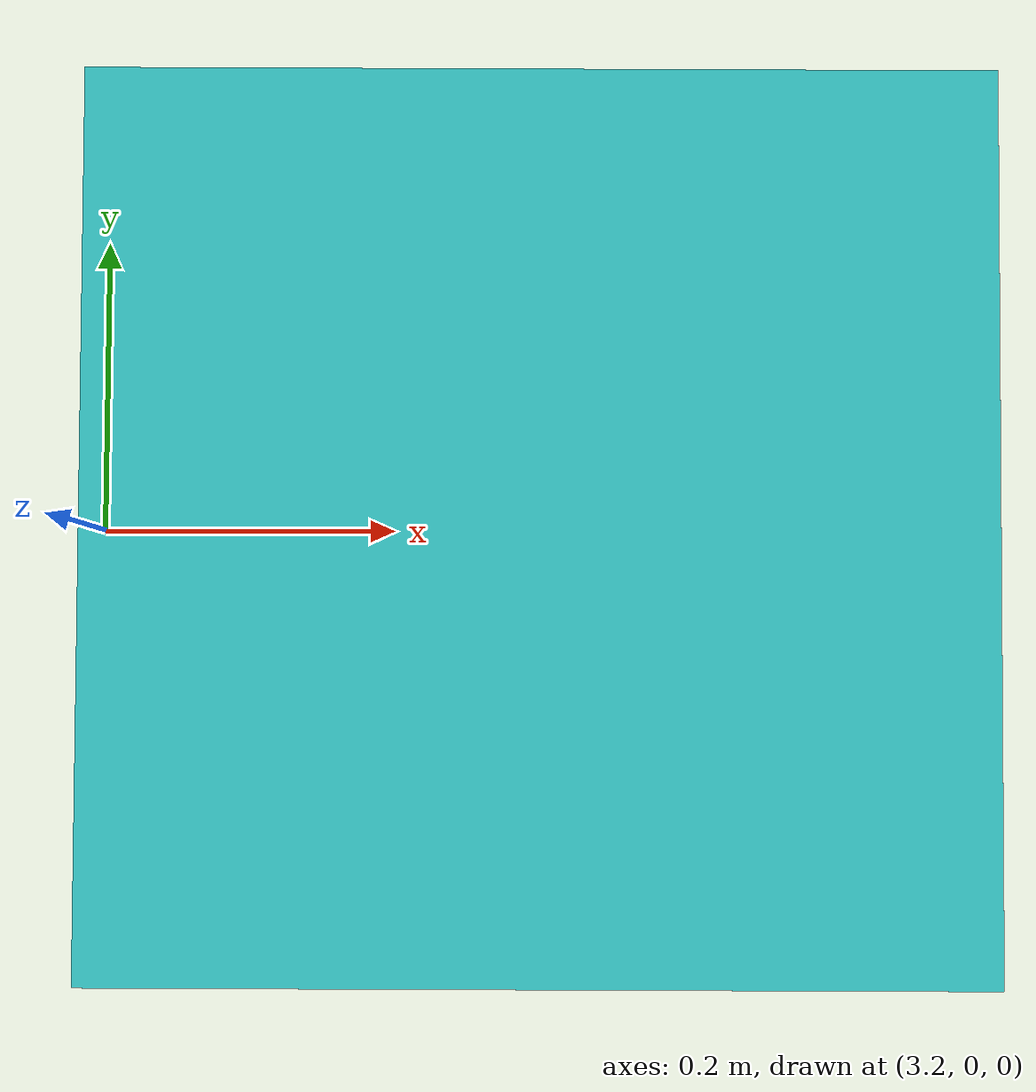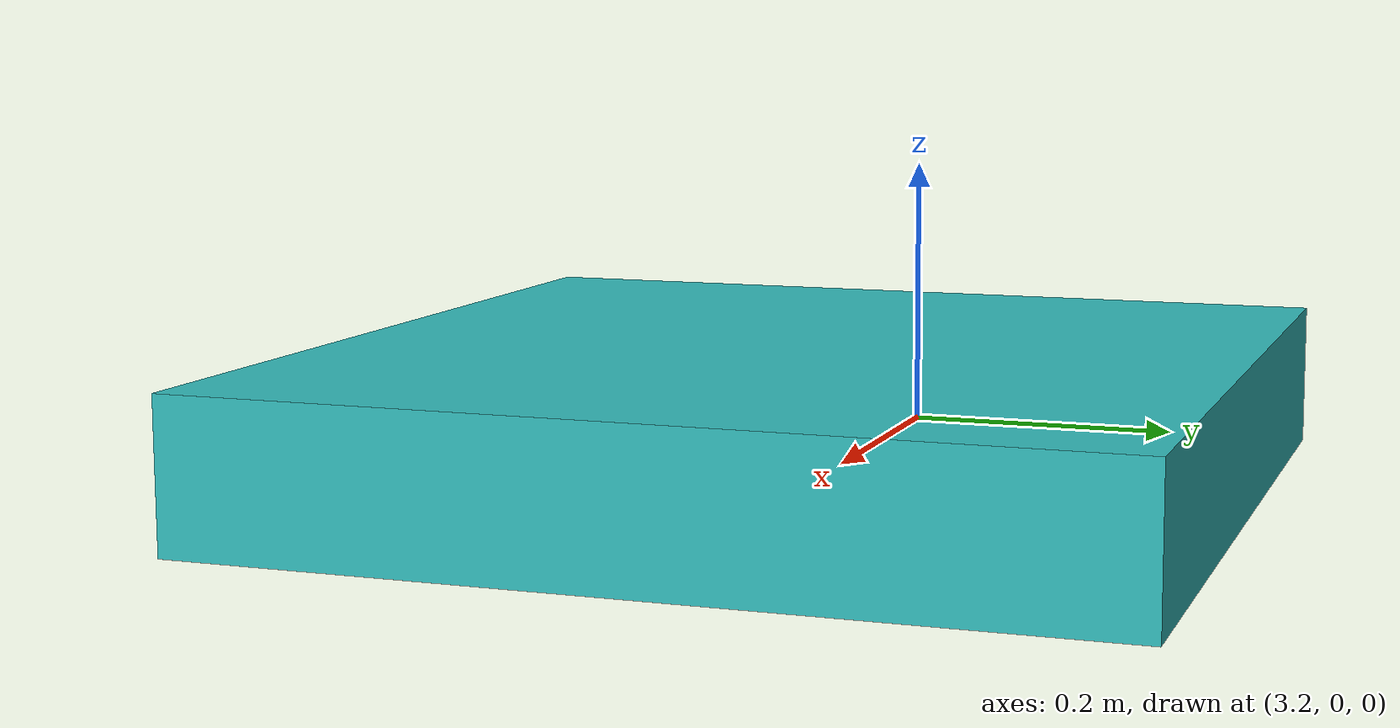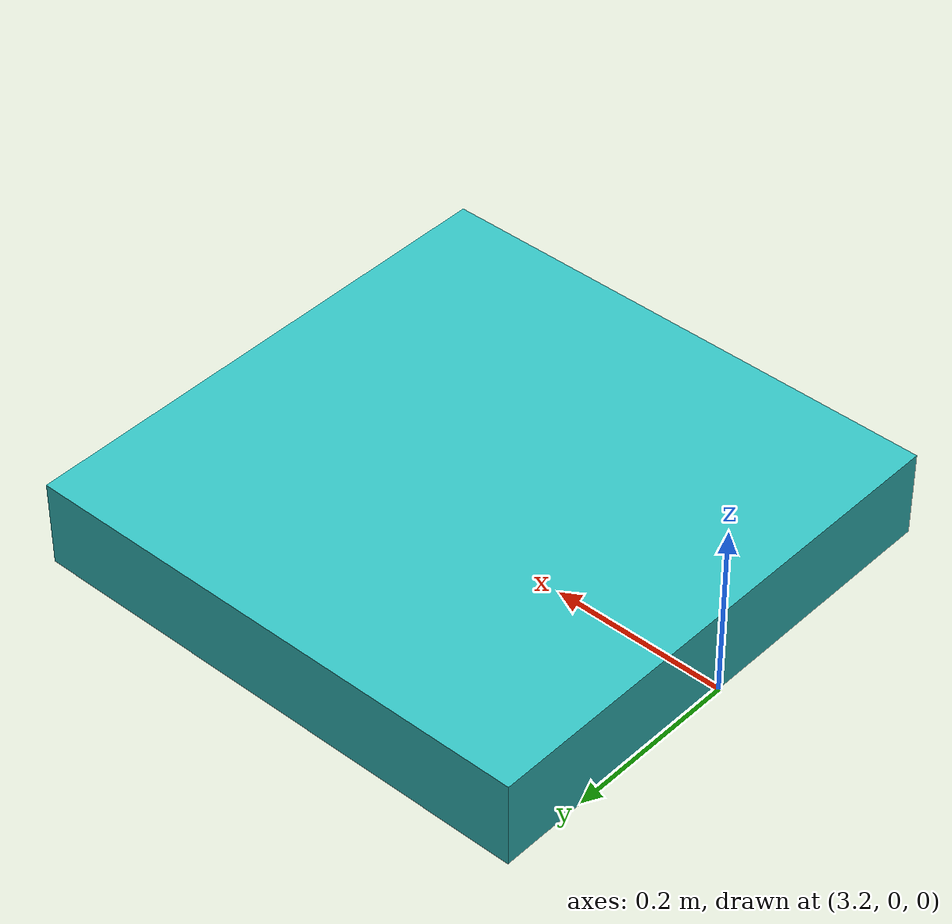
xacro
<?xml version="1.0"?>

<!-- Robot Name -->
<robot name="LiCAS_A1_cube_goal" xmlns:xacro="http://ros.org/wiki/xacro">

  <link name="world" />

  <joint name="cube_goal_base_joint" type="fixed">
    <origin xyz="3.5 0 0.05" rpy="0 0 0"/>
    <parent link="world"/>
    <child link="cube_goal_base"/>
  </joint>

  <link name="cube_goal_base">
    <inertial>
      <origin rpy="0 0 0" xyz="0 0 0"/>
      <mass value="1e3" />
      <inertia ixx="10" ixy="0.0" ixz="0.0" iyy="10" iyz="0.0" izz="10"/>
    </inertial>
    <visual>
      <origin xyz="0 0 0"/>
      <geometry>
	      <box size="0.6 0.6 0.1"/>
      </geometry>
    </visual>
    <collision>
      <origin xyz="0 0 0"/>
      <geometry>
	      <box size="0.6 0.7 0.1"/>
      </geometry>
    </collision>
  </link>

  <gazebo reference="cube_goal_base">
    <material>Gazebo/Turquoise</material>
    <mu1>0.5</mu1>
    <mu2>0.5</mu2>
    <kp value="1e6" />
    <kd value="1e6" />
  </gazebo>

</robot>
